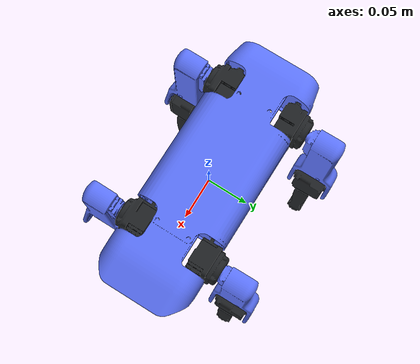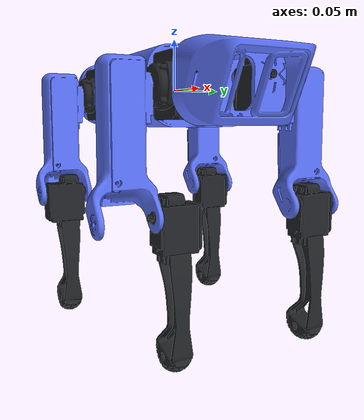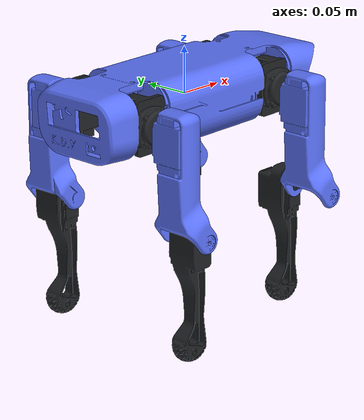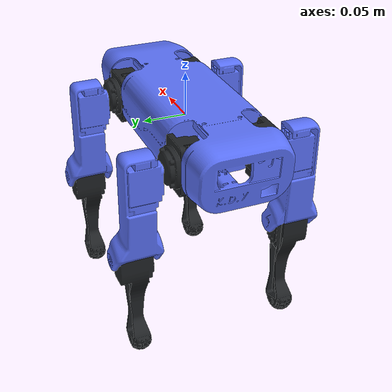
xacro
<?xml version="1.0" ?>
<robot name="quadruped" xmlns:xacro="http://www.ros.org/wiki/xacro">

<xacro:macro name="quadruped" params="prefix load_meta:=true">

<xacro:if value="${load_meta}">
  <xacro:include filename="$(find quad_urdf)/urdf/quadruped.trans" />
  <xacro:include filename="$(find quad_urdf)/urdf/quadruped.gazebo" />
</xacro:if>

<material name="atlas_blue">
  <color rgba="0.360 0.450 0.980 1.000"/>
</material>

<material name="atlas_dark_gray">
  <color rgba="0.125 0.135 0.145 1.000"/>
</material>

<link name="${prefix}base_link">
  <visual>
    <!-- Center the CAD-exported base mesh on the base_link frame. -->
    <origin xyz="-0.284511 -0.607414 0.007931" rpy="0 0 0"/>
    <geometry>
      <mesh filename="package://quad_urdf/meshes/base_link.stl" scale="0.001 0.001 0.001"/>
    </geometry>
    <material name="atlas_blue"/>
  </visual>
  <collision>
    <origin xyz="-0.284511 -0.607414 0.007931" rpy="0 0 0"/>
    <geometry>
      <mesh filename="package://quad_urdf/meshes/base_link.stl" scale="0.001 0.001 0.001"/>
    </geometry>
  </collision>
</link>

<link name="${prefix}fr_hip">
  <inertial>
    <origin xyz="-0.026086790989912623 -0.005867198730980627 -0.01127477652647139" rpy="0 0 0"/>
    <mass value="0.44027574194364083"/>
    <inertia ixx="0.000129" iyy="0.000143" izz="9.8e-05" ixy="-1e-06" iyz="-0.0" ixz="-0.0"/>
  </inertial>
  <visual>
    <origin xyz="0 0 0" rpy="0 0 0"/>
    <geometry>
      <mesh filename="package://quad_urdf/meshes/fr_hip.stl" scale="0.001 0.001 0.001"/>
    </geometry>
    <material name="atlas_dark_gray"/>
  </visual>
  <collision>
    <origin xyz="0 0 0" rpy="0 0 0"/>
    <geometry>
      <mesh filename="package://quad_urdf/meshes/fr_hip.stl" scale="0.001 0.001 0.001"/>
    </geometry>
  </collision>
</link>

<link name="${prefix}fr_leg">
  <inertial>
    <origin xyz="0.3947925469185277 0.5433710991268442 -0.037815712343402204" rpy="0 0 0"/>
    <mass value="0.8819417369199075"/>
    <inertia ixx="0.001237" iyy="0.001149" izz="0.000204" ixy="3e-06" iyz="-5e-05" ixz="2.2e-05"/>
  </inertial>
  <visual>
    <origin xyz="0 0 0" rpy="0 0 0"/>
    <geometry>
      <mesh filename="package://quad_urdf/meshes/fr_leg.stl" scale="0.001 0.001 0.001"/>
    </geometry>
    <material name="atlas_blue"/>
  </visual>
  <collision>
    <origin xyz="0 0 0" rpy="0 0 0"/>
    <geometry>
      <mesh filename="package://quad_urdf/meshes/fr_leg.stl" scale="0.001 0.001 0.001"/>
    </geometry>
  </collision>
</link>

<link name="${prefix}fr_foot">
  <inertial>
    <origin xyz="0.3654485475326877 0.5215144993291012 -0.04431430625614306" rpy="0 0 0"/>
    <mass value="0.47015491572065066"/>
    <inertia ixx="0.000959" iyy="0.000946" izz="7e-05" ixy="-3e-06" iyz="1.5e-05" ixz="2.6e-05"/>
  </inertial>
  <visual>
    <origin xyz="0 0 0" rpy="0 0 0"/>
    <geometry>
      <mesh filename="package://quad_urdf/meshes/fr_foot.stl" scale="0.001 0.001 0.001"/>
    </geometry>
    <material name="atlas_dark_gray"/>
  </visual>
  <collision>
    <origin xyz="0 0 0" rpy="0 0 0"/>
    <geometry>
      <mesh filename="package://quad_urdf/meshes/fr_foot.stl" scale="0.001 0.001 0.001"/>
    </geometry>
  </collision>
</link>

<link name="${prefix}fl_hip">
  <inertial>
    <origin xyz="-0.025556619450027296 0.005789826228623007 -0.011261893496973496" rpy="0 0 0"/>
    <mass value="0.43930544603302274"/>
    <inertia ixx="0.000129" iyy="0.000144" izz="9.8e-05" ixy="1e-06" iyz="0.0" ixz="-1e-06"/>
  </inertial>
  <visual>
    <origin xyz="0 0 0" rpy="0 0 0"/>
    <geometry>
      <mesh filename="package://quad_urdf/meshes/fl_hip.stl" scale="0.001 0.001 0.001"/>
    </geometry>
    <material name="atlas_dark_gray"/>
  </visual>
  <collision>
    <origin xyz="0 0 0" rpy="0 0 0"/>
    <geometry>
      <mesh filename="package://quad_urdf/meshes/fl_hip.stl" scale="0.001 0.001 0.001"/>
    </geometry>
  </collision>
</link>

<link name="${prefix}fl_leg">
  <inertial>
    <origin xyz="0.3947099512795677 0.67506214724498 -0.03815383394358596" rpy="0 0 0"/>
    <mass value="0.879880071723492"/>
    <inertia ixx="0.00123" iyy="0.001145" izz="0.0002" ixy="-4e-06" iyz="4.8e-05" ixz="2.8e-05"/>
  </inertial>
  <visual>
    <origin xyz="0 0 0" rpy="0 0 0"/>
    <geometry>
      <mesh filename="package://quad_urdf/meshes/fl_leg.stl" scale="0.001 0.001 0.001"/>
    </geometry>
    <material name="atlas_blue"/>
  </visual>
  <collision>
    <origin xyz="0 0 0" rpy="0 0 0"/>
    <geometry>
      <mesh filename="package://quad_urdf/meshes/fl_leg.stl" scale="0.001 0.001 0.001"/>
    </geometry>
  </collision>
</link>

<link name="${prefix}fl_foot">
  <inertial>
    <origin xyz="0.36555329992621033 0.6943825809209088 -0.04443991273848853" rpy="0 0 0"/>
    <mass value="0.487439135662388"/>
    <inertia ixx="0.000995" iyy="0.00098" izz="7.3e-05" ixy="3e-06" iyz="-2e-05" ixz="2.7e-05"/>
  </inertial>
  <visual>
    <origin xyz="0 0 0" rpy="0 0 0"/>
    <geometry>
      <mesh filename="package://quad_urdf/meshes/fl_foot.stl" scale="0.001 0.001 0.001"/>
    </geometry>
    <material name="atlas_dark_gray"/>
  </visual>
  <collision>
    <origin xyz="0 0 0" rpy="0 0 0"/>
    <geometry>
      <mesh filename="package://quad_urdf/meshes/fl_foot.stl" scale="0.001 0.001 0.001"/>
    </geometry>
  </collision>
</link>

<link name="${prefix}rr_hip">
  <inertial>
    <origin xyz="0.02579095185982916 -0.005806747085002728 -0.010704551769118914" rpy="0 0 0"/>
    <mass value="0.43930544603953486"/>
    <inertia ixx="0.000128" iyy="0.000144" izz="9.8e-05" ixy="1e-06" iyz="-0.0" ixz="1e-06"/>
  </inertial>
  <visual>
    <origin xyz="0 0 0" rpy="0 0 0"/>
    <geometry>
      <mesh filename="package://quad_urdf/meshes/rr_hip.stl" scale="0.001 0.001 0.001"/>
    </geometry>
    <material name="atlas_dark_gray"/>
  </visual>
  <collision>
    <origin xyz="0 0 0" rpy="0 0 0"/>
    <geometry>
      <mesh filename="package://quad_urdf/meshes/rr_hip.stl" scale="0.001 0.001 0.001"/>
    </geometry>
  </collision>
</link>

<link name="${prefix}rr_leg">
  <inertial>
    <origin xyz="0.15659326994590203 0.5433974089462889 -0.039187390238133446" rpy="0 0 0"/>
    <mass value="0.8819417369199066"/>
    <inertia ixx="0.001237" iyy="0.001149" izz="0.000204" ixy="3e-06" iyz="-5e-05" ixz="2.2e-05"/>
  </inertial>
  <visual>
    <origin xyz="0 0 0" rpy="0 0 0"/>
    <geometry>
      <mesh filename="package://quad_urdf/meshes/rr_leg.stl" scale="0.001 0.001 0.001"/>
    </geometry>
    <material name="atlas_blue"/>
  </visual>
  <collision>
    <origin xyz="0 0 0" rpy="0 0 0"/>
    <geometry>
      <mesh filename="package://quad_urdf/meshes/rr_leg.stl" scale="0.001 0.001 0.001"/>
    </geometry>
  </collision>
</link>

<link name="${prefix}rr_foot">
  <inertial>
    <origin xyz="0.17874521299615723 0.524365755443426 -0.045166208502470426" rpy="0 0 0"/>
    <mass value="0.47015491572065116"/>
    <inertia ixx="0.000959" iyy="0.000946" izz="7e-05" ixy="-3e-06" iyz="1.5e-05" ixz="2.6e-05"/>
  </inertial>
  <visual>
    <origin xyz="0 0 0" rpy="0 0 0"/>
    <geometry>
      <mesh filename="package://quad_urdf/meshes/rr_foot.stl" scale="0.001 0.001 0.001"/>
    </geometry>
    <material name="atlas_dark_gray"/>
  </visual>
  <collision>
    <origin xyz="0 0 0" rpy="0 0 0"/>
    <geometry>
      <mesh filename="package://quad_urdf/meshes/rr_foot.stl" scale="0.001 0.001 0.001"/>
    </geometry>
  </collision>
</link>

<link name="${prefix}rl_hip">
  <inertial>
    <origin xyz="0.026322619887164972 0.005850313582366651 -0.010724326121572968" rpy="0 0 0"/>
    <mass value="0.4402757419438755"/>
    <inertia ixx="0.000129" iyy="0.000143" izz="9.8e-05" ixy="-1e-06" iyz="0.0" ixz="1e-06"/>
  </inertial>
  <visual>
    <origin xyz="0 0 0" rpy="0 0 0"/>
    <geometry>
      <mesh filename="package://quad_urdf/meshes/rl_hip.stl" scale="0.001 0.001 0.001"/>
    </geometry>
    <material name="atlas_dark_gray"/>
  </visual>
  <collision>
    <origin xyz="0 0 0" rpy="0 0 0"/>
    <geometry>
      <mesh filename="package://quad_urdf/meshes/rl_hip.stl" scale="0.001 0.001 0.001"/>
    </geometry>
  </collision>
</link>

<link name="${prefix}rl_leg">
  <inertial>
    <origin xyz="0.15691032277924563 0.6750875262239687 -0.03944187045787676" rpy="0 0 0"/>
    <mass value="0.8798800717256502"/>
    <inertia ixx="0.00123" iyy="0.001145" izz="0.0002" ixy="-4e-06" iyz="4.8e-05" ixz="2.8e-05"/>
  </inertial>
  <visual>
    <origin xyz="0 0 0" rpy="0 0 0"/>
    <geometry>
      <mesh filename="package://quad_urdf/meshes/rl_leg.stl" scale="0.001 0.001 0.001"/>
    </geometry>
    <material name="atlas_blue"/>
  </visual>
  <collision>
    <origin xyz="0 0 0" rpy="0 0 0"/>
    <geometry>
      <mesh filename="package://quad_urdf/meshes/rl_leg.stl" scale="0.001 0.001 0.001"/>
    </geometry>
  </collision>
</link>

<link name="${prefix}rl_foot">
  <inertial>
    <origin xyz="0.1792486714259044 0.6972339598998757 -0.045152949252848976" rpy="0 0 0"/>
    <mass value="0.48743913566238695"/>
    <inertia ixx="0.000995" iyy="0.00098" izz="7.3e-05" ixy="3e-06" iyz="-2e-05" ixz="2.7e-05"/>
  </inertial>
  <visual>
    <origin xyz="0 0 0" rpy="0 0 0"/>
    <geometry>
      <mesh filename="package://quad_urdf/meshes/rl_foot.stl" scale="0.001 0.001 0.001"/>
    </geometry>
    <material name="atlas_dark_gray"/>
  </visual>
  <collision>
    <origin xyz="0 0 0" rpy="0 0 0"/>
    <geometry>
      <mesh filename="package://quad_urdf/meshes/rl_foot.stl" scale="0.001 0.001 0.001"/>
    </geometry>
  </collision>
</link>

<joint name="${prefix}fr_i_hip" type="revolute">
  <origin xyz="0.107375 -0.037199 0.010791" rpy="0.0 -0.0 0.0"/>
  <parent link="${prefix}base_link"/>
  <child link="${prefix}fr_hip"/>
  <axis xyz="-0.999943 -4e-06 -0.010677"/>
  <limit upper="0.610865" lower="-0.610865" effort="100" velocity="100"/>
</joint>

<joint name="${prefix}fr_o_hip" type="revolute">
  <origin xyz="-0.025887 -0.027214 -0.011343" rpy="0.0 -0.0 0.0"/>
  <parent link="${prefix}fr_hip"/>
  <child link="${prefix}fr_leg"/>
  <axis xyz="-4e-06 -1.0 0.000781"/>
  <limit upper="0.785398" lower="-0.785398" effort="100" velocity="100"/>
</joint>

<joint name="${prefix}fr_knee" type="revolute">
  <origin xyz="0.015613 -0.007284 -0.107495" rpy="0.0 -0.0 0.0"/>
  <parent link="${prefix}fr_leg"/>
  <child link="${prefix}fr_foot"/>
  <axis xyz="-4e-06 -1.0 0.000781"/>
  <limit upper="0.785398" lower="-0.785398" effort="100" velocity="100"/>
</joint>

<joint name="${prefix}fl_i_hip" type="revolute">
  <origin xyz="0.106976 0.040775 0.010687" rpy="0.0 -0.0 0.0"/>
  <parent link="${prefix}base_link"/>
  <child link="${prefix}fl_hip"/>
  <axis xyz="-0.999943 -4e-06 -0.010677"/>
  <limit upper="0.610865" lower="-0.610865" effort="100" velocity="100"/>
</joint>

<joint name="${prefix}fl_o_hip" type="revolute">
  <origin xyz="-0.025359 0.024371 -0.011405" rpy="0.0 -0.0 0.0"/>
  <parent link="${prefix}fl_hip"/>
  <child link="${prefix}fl_leg"/>
  <axis xyz="4e-06 1.0 -0.000781"/>
  <limit upper="0.785398" lower="-0.785398" effort="100" velocity="100"/>
</joint>

<joint name="${prefix}fl_knee" type="revolute">
  <origin xyz="0.016571 0.007116 -0.107193" rpy="0.0 -0.0 0.0"/>
  <parent link="${prefix}fl_leg"/>
  <child link="${prefix}fl_foot"/>
  <axis xyz="4e-06 1.0 -0.000781"/>
  <limit upper="0.785398" lower="-0.785398" effort="100" velocity="100"/>
</joint>

<joint name="${prefix}rr_i_hip" type="revolute">
  <origin xyz="-0.130823 -0.037173 0.009420" rpy="0.0 -0.0 0.0"/>
  <parent link="${prefix}base_link"/>
  <child link="${prefix}rr_hip"/>
  <axis xyz="0.999943 4e-06 0.010677"/>
  <limit upper="0.610865" lower="-0.610865" effort="100" velocity="100"/>
</joint>

<joint name="${prefix}rr_o_hip" type="revolute">
  <origin xyz="0.025609 -0.024389 -0.010823" rpy="0.0 -0.0 0.0"/>
  <parent link="${prefix}rr_hip"/>
  <child link="${prefix}rr_leg"/>
  <axis xyz="-4e-06 -1.0 0.000781"/>
  <limit upper="0.785398" lower="-0.785398" effort="100" velocity="100"/>
</joint>

<joint name="${prefix}rr_knee" type="revolute">
  <origin xyz="0.01628 -0.007284 -0.10756" rpy="0.0 -0.0 0.0"/>
  <parent link="${prefix}rr_leg"/>
  <child link="${prefix}rr_foot"/>
  <axis xyz="-4e-06 -1.0 0.000781"/>
  <limit upper="0.785398" lower="-0.785398" effort="100" velocity="100"/>
</joint>

<joint name="${prefix}rl_i_hip" type="revolute">
  <origin xyz="-0.130824 0.040801 0.009398" rpy="0.0 -0.0 0.0"/>
  <parent link="${prefix}base_link"/>
  <child link="${prefix}rl_hip"/>
  <axis xyz="0.999943 4e-06 0.010677"/>
  <limit upper="0.610865" lower="-0.610865" effort="100" velocity="100"/>
</joint>

<joint name="${prefix}rl_o_hip" type="revolute">
  <origin xyz="0.026136 0.027197 -0.01083" rpy="0.0 -0.0 0.0"/>
  <parent link="${prefix}rl_hip"/>
  <child link="${prefix}rl_leg"/>
  <axis xyz="4e-06 1.0 -0.000781"/>
  <limit upper="0.785398" lower="-0.785398" effort="100" velocity="100"/>
</joint>

<joint name="${prefix}rl_knee" type="revolute">
  <origin xyz="0.016571 0.007116 -0.107193" rpy="0.0 -0.0 0.0"/>
  <parent link="${prefix}rl_leg"/>
  <child link="${prefix}rl_foot"/>
  <axis xyz="4e-06 1.0 -0.000781"/>
  <limit upper="0.785398" lower="-0.785398" effort="100" velocity="100"/>
</joint>

</xacro:macro>

<xacro:quadruped prefix=""/>
</robot>

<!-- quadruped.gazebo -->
<robot name="quadruped" xmlns:xacro="http://www.ros.org/wiki/xacro" >

<xacro:property name="body_color" value="Gazebo/Silver" />

<gazebo>
  <plugin name="control" filename="libgazebo_ros_control.so"/>
</gazebo>
<gazebo reference="base_link">
  <material>${body_color}</material>
  <mu1>0.2</mu1>
  <mu2>0.2</mu2>
  <self_collide>true</self_collide>
  <gravity>true</gravity>
</gazebo>

<gazebo reference="fr_hip">
  <material>${body_color}</material>
  <mu1>0.2</mu1>
  <mu2>0.2</mu2>
  <self_collide>true</self_collide>
</gazebo>

<gazebo reference="fr_leg">
  <material>${body_color}</material>
  <mu1>0.2</mu1>
  <mu2>0.2</mu2>
  <self_collide>true</self_collide>
</gazebo>

<gazebo reference="fr_foot">
  <material>${body_color}</material>
  <mu1>0.2</mu1>
  <mu2>0.2</mu2>
  <self_collide>true</self_collide>
</gazebo>

<gazebo reference="fl_hip">
  <material>${body_color}</material>
  <mu1>0.2</mu1>
  <mu2>0.2</mu2>
  <self_collide>true</self_collide>
</gazebo>

<gazebo reference="fl_leg">
  <material>${body_color}</material>
  <mu1>0.2</mu1>
  <mu2>0.2</mu2>
  <self_collide>true</self_collide>
</gazebo>

<gazebo reference="fl_foot">
  <material>${body_color}</material>
  <mu1>0.2</mu1>
  <mu2>0.2</mu2>
  <self_collide>true</self_collide>
</gazebo>

<gazebo reference="rr_hip">
  <material>${body_color}</material>
  <mu1>0.2</mu1>
  <mu2>0.2</mu2>
  <self_collide>true</self_collide>
</gazebo>

<gazebo reference="rr_leg">
  <material>${body_color}</material>
  <mu1>0.2</mu1>
  <mu2>0.2</mu2>
  <self_collide>true</self_collide>
</gazebo>

<gazebo reference="rr_foot">
  <material>${body_color}</material>
  <mu1>0.2</mu1>
  <mu2>0.2</mu2>
  <self_collide>true</self_collide>
</gazebo>

<gazebo reference="rl_hip">
  <material>${body_color}</material>
  <mu1>0.2</mu1>
  <mu2>0.2</mu2>
  <self_collide>true</self_collide>
</gazebo>

<gazebo reference="rl_leg">
  <material>${body_color}</material>
  <mu1>0.2</mu1>
  <mu2>0.2</mu2>
  <self_collide>true</self_collide>
</gazebo>

<gazebo reference="rl_foot">
  <material>${body_color}</material>
  <mu1>0.2</mu1>
  <mu2>0.2</mu2>
  <self_collide>true</self_collide>
</gazebo>

</robot>
